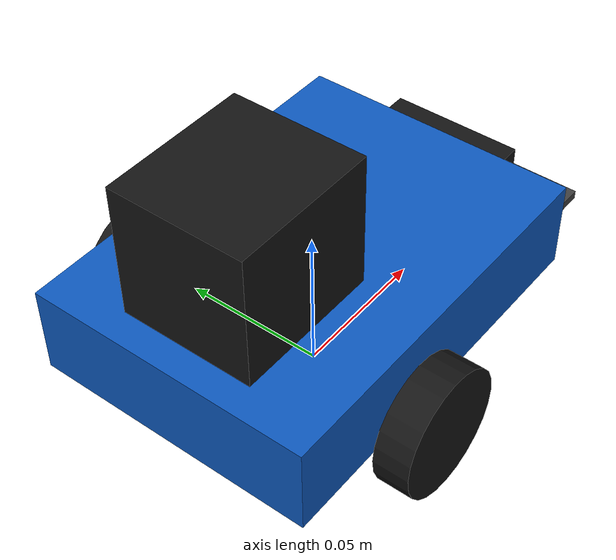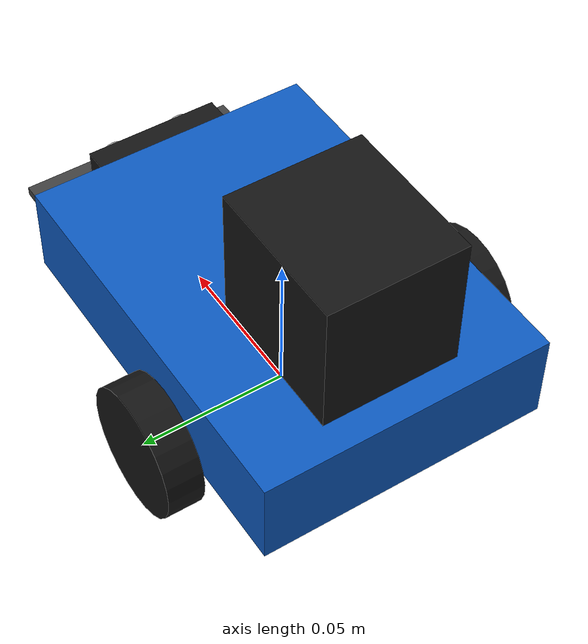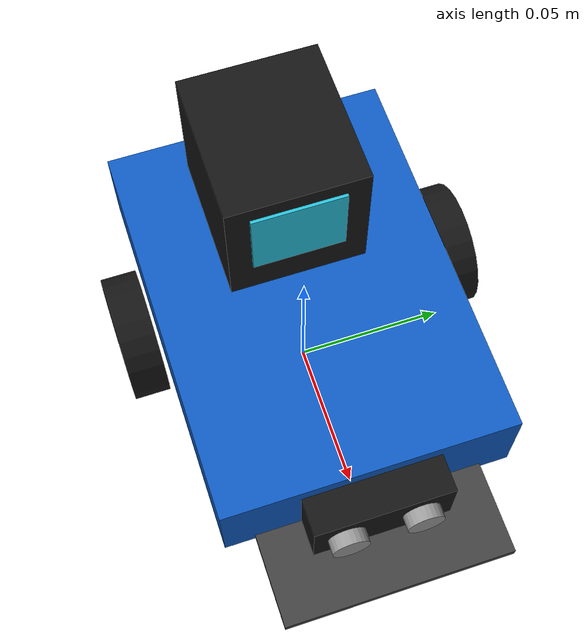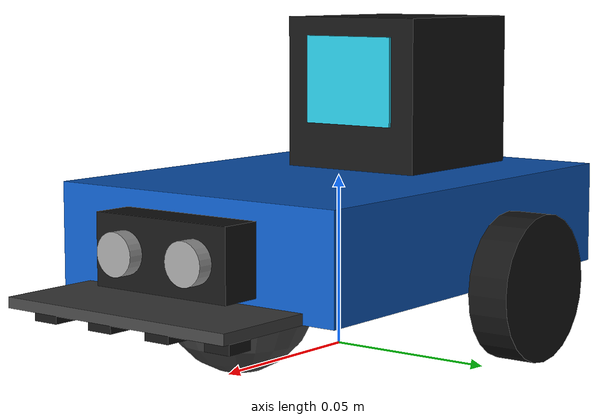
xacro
<?xml version="1.0"?>
<robot name="mbot2" xmlns:xacro="http://www.ros.org/wiki/xacro">

  <!-- Prefix ทุก Gazebo topic ของหุ่นแต่ละตัว เช่น /mbot1 หรือ /mbot2 -->
  <xacro:arg name="robot_namespace" default=""/>
  <xacro:property name="topic_namespace" value="$(arg robot_namespace)"/>

  <!-- Dimensions are approximate, based on mBot2's published        -->
  <!-- overall size (~170 x 95 x 75 mm). Built from primitives only  -->
  <!-- (no mesh files needed).                                       -->

  <!-- Chassis -->
  <xacro:property name="chassis_length" value="0.130"/>
  <xacro:property name="chassis_width"  value="0.095"/>
  <xacro:property name="chassis_height" value="0.030"/>
  <xacro:property name="chassis_mass"   value="0.35"/>

  <!-- Drive wheels -->
  <xacro:property name="wheel_radius" value="0.021"/>
  <xacro:property name="wheel_width"  value="0.012"/>
  <xacro:property name="wheel_mass"   value="0.03"/>
  <xacro:property name="wheel_separation" value="0.110"/>
  <xacro:property name="wheel_x" value="-0.015"/>

  <!-- Caster (rear/front support wheel, modeled as a low-friction sphere) -->
  <xacro:property name="caster_radius" value="${wheel_radius}"/>
  <xacro:property name="caster_mass"   value="0.01"/>
  <xacro:property name="caster_x" value="${chassis_length/2 - 0.02}"/>

  <!-- CyberPi controller block on top -->
  <xacro:property name="cyberpi_length" value="0.050"/>
  <xacro:property name="cyberpi_width"  value="0.045"/>
  <xacro:property name="cyberpi_height" value="0.045"/>
  <xacro:property name="cyberpi_mass"   value="0.05"/>
  <xacro:property name="cyberpi_x" value="-0.030"/>

  <!-- Ultrasonic sensor block at the front -->
  <xacro:property name="us_length" value="0.015"/>
  <xacro:property name="us_width"  value="0.045"/>
  <xacro:property name="us_height" value="0.020"/>
  <xacro:property name="us_mass"   value="0.01"/>

  <!-- Front sensor mount plate: extends past the chassis + caster so the -->
  <!-- Quad RGB array can see the ground ahead of every wheel -->
  <xacro:property name="mount_length"    value="0.03"/>
  <xacro:property name="mount_width"     value="0.075"/>
  <xacro:property name="mount_thickness" value="0.003"/>
  <xacro:property name="mount_x" value="${chassis_length/2 + mount_length/2}"/>

  <!-- Quad RGB color sensor array, underside of the front mount plate -->
  <xacro:property name="qrgb_size" value="0.008"/>
  <xacro:property name="qrgb_height" value="0.004"/>
  <xacro:property name="qrgb_mass"   value="0.001"/>
  <xacro:property name="qrgb_x" value="${chassis_length/2 + mount_length - 0.01}"/>
  <xacro:property name="qrgb_z" value="${wheel_radius - qrgb_height/2}"/>
  <xacro:property name="mount_z" value="${qrgb_z + qrgb_height/2 + mount_thickness/2}"/>

  <!-- Colors -->
  <material name="mbot_blue">
    <color rgba="0.05 0.35 0.75 1.0"/>
  </material>
  <material name="mbot_black">
    <color rgba="0.08 0.08 0.08 1.0"/>
  </material>
  <material name="mbot_dark_grey">
    <color rgba="0.25 0.25 0.25 1.0"/>
  </material>
  <material name="mbot_screen">
    <color rgba="0.15 0.75 0.85 1.0"/>
  </material>
  <material name="mbot_eye">
    <color rgba="0.6 0.6 0.6 1.0"/>
  </material>

  <!-- base_link : chassis                                           -->
  <!-- Origin is on the ground, centered between the two drive       -->
  <!-- wheels (REP-103: x forward, y left, z up).                    -->
  <link name="base_link">
    <visual>
      <origin xyz="0 0 ${wheel_radius + chassis_height/2}" rpy="0 0 0"/>
      <geometry>
        <box size="${chassis_length} ${chassis_width} ${chassis_height}"/>
      </geometry>
      <material name="mbot_blue"/>
    </visual>
    <collision>
      <origin xyz="0 0 ${wheel_radius + chassis_height/2}" rpy="0 0 0"/>
      <geometry>
        <box size="${chassis_length} ${chassis_width} ${chassis_height}"/>
      </geometry>
    </collision>
    <inertial>
      <origin xyz="0 0 ${wheel_radius + chassis_height/2}" rpy="0 0 0"/>
      <mass value="${chassis_mass}"/>
      <inertia ixx="0.0006" ixy="0" ixz="0" iyy="0.0009" iyz="0" izz="0.0012"/>
    </inertial>
  </link>

  <!-- CyberPi controller block (top, toward the rear)                -->
  <link name="cyberpi_link">
    <visual>
      <geometry>
        <box size="${cyberpi_length} ${cyberpi_width} ${cyberpi_height}"/>
      </geometry>
      <material name="mbot_black"/>
    </visual>
    <collision>
      <geometry>
        <box size="${cyberpi_length} ${cyberpi_width} ${cyberpi_height}"/>
      </geometry>
    </collision>
    <inertial>
      <mass value="${cyberpi_mass}"/>
      <inertia ixx="0.00002" ixy="0" ixz="0" iyy="0.00002" iyz="0" izz="0.00002"/>
    </inertial>
  </link>

  <joint name="cyberpi_joint" type="fixed">
    <parent link="base_link"/>
    <child link="cyberpi_link"/>
    <origin xyz="${cyberpi_x} 0 ${wheel_radius + chassis_height + cyberpi_height/2}" rpy="0 0 0"/>
  </joint>

  <!-- Little screen face on the CyberPi block, facing forward/up -->
  <link name="cyberpi_screen_link">
    <visual>
      <geometry>
        <box size="0.004 0.030 0.026"/>
      </geometry>
      <material name="mbot_screen"/>
    </visual>
  </link>

  <joint name="cyberpi_screen_joint" type="fixed">
    <parent link="cyberpi_link"/>
    <child link="cyberpi_screen_link"/>
    <origin xyz="${cyberpi_length/2 - 0.001} 0 0.004" rpy="0 0 0"/>
  </joint>

  <!-- Ultrasonic sensor block, front of the chassis                  -->
  <link name="ultrasonic_link">
    <visual>
      <geometry>
        <box size="${us_length} ${us_width} ${us_height}"/>
      </geometry>
      <material name="mbot_black"/>
    </visual>
    <collision>
      <geometry>
        <box size="${us_length} ${us_width} ${us_height}"/>
      </geometry>
    </collision>
    <inertial>
      <mass value="${us_mass}"/>
      <inertia ixx="0.000005" ixy="0" ixz="0" iyy="0.000005" iyz="0" izz="0.000005"/>
    </inertial>
  </link>

  <joint name="ultrasonic_joint" type="fixed">
    <parent link="base_link"/>
    <child link="ultrasonic_link"/>
    <origin xyz="${chassis_length/2 + us_length/2 - 0.003} 0 ${wheel_radius + chassis_height/2}" rpy="0 0 0"/>
  </joint>

  <!-- Two small "eyes" on the ultrasonic sensor, purely cosmetic -->
  <xacro:macro name="us_eye" params="suffix y_off">
    <link name="ultrasonic_eye_${suffix}">
      <visual>
        <geometry>
          <cylinder radius="0.006" length="0.006"/>
        </geometry>
        <material name="mbot_eye"/>
      </visual>
    </link>
    <joint name="ultrasonic_eye_${suffix}_joint" type="fixed">
      <parent link="ultrasonic_link"/>
      <child link="ultrasonic_eye_${suffix}"/>
      <origin xyz="0.009 ${y_off} 0" rpy="0 ${pi/2} 0"/>
    </joint>
  </xacro:macro>
  <xacro:us_eye suffix="left"  y_off="0.012"/>
  <xacro:us_eye suffix="right" y_off="-0.012"/>

  <!-- Drive wheels                                                   -->
  <xacro:macro name="drive_wheel" params="prefix reflect">
    <link name="${prefix}_wheel_link">
      <visual>
        <origin xyz="0 0 0" rpy="${pi/2} 0 0"/>
        <geometry>
          <cylinder radius="${wheel_radius}" length="${wheel_width}"/>
        </geometry>
        <material name="mbot_black"/>
      </visual>
      <collision>
        <origin xyz="0 0 0" rpy="${pi/2} 0 0"/>
        <geometry>
          <cylinder radius="${wheel_radius}" length="${wheel_width}"/>
        </geometry>
      </collision>
      <inertial>
        <mass value="${wheel_mass}"/>
        <inertia ixx="0.00001" ixy="0" ixz="0" iyy="0.00001" iyz="0" izz="0.00001"/>
      </inertial>
    </link>

    <joint name="${prefix}_wheel_joint" type="continuous">
      <parent link="base_link"/>
      <child link="${prefix}_wheel_link"/>
      <origin xyz="${wheel_x} ${reflect * wheel_separation/2} ${wheel_radius}" rpy="0 0 0"/>
      <axis xyz="0 1 0"/>
    </joint>

    <gazebo reference="${prefix}_wheel_link">
      <mu1>1.0</mu1>
      <mu2>1.0</mu2>
    </gazebo>
  </xacro:macro>

  <xacro:drive_wheel prefix="left"  reflect="1"/>
  <xacro:drive_wheel prefix="right" reflect="-1"/>

  <!-- Caster (support) wheel, modeled as a low-friction sphere       -->
  <link name="caster_link">
    <visual>
      <geometry>
        <sphere radius="${caster_radius}"/>
      </geometry>
      <material name="mbot_dark_grey"/>
    </visual>
    <collision>
      <geometry>
        <sphere radius="${caster_radius}"/>
      </geometry>
    </collision>
    <inertial>
      <mass value="${caster_mass}"/>
      <inertia ixx="0.000002" ixy="0" ixz="0" iyy="0.000002" iyz="0" izz="0.000002"/>
    </inertial>
  </link>

  <joint name="caster_joint" type="fixed">
    <parent link="base_link"/>
    <child link="caster_link"/>
    <origin xyz="${caster_x} 0 ${caster_radius}" rpy="0 0 0"/>
  </joint>

  <gazebo reference="caster_link">
    <mu1>0.001</mu1>
    <mu2>0.001</mu2>
  </gazebo>

  <!-- Front sensor mount plate (cosmetic, no collision) — carries   -->
  <!-- the Quad RGB array out past the caster so the sensors see the -->
  <!-- ground ahead of every wheel, same as a real line-follower.    -->
  <link name="sensor_mount_link">
    <visual>
      <geometry>
        <box size="${mount_length} ${mount_width} ${mount_thickness}"/>
      </geometry>
      <material name="mbot_dark_grey"/>
    </visual>
    <inertial>
      <mass value="0.002"/>
      <inertia ixx="1e-8" ixy="0" ixz="0" iyy="1e-8" iyz="0" izz="1e-8"/>
    </inertial>
  </link>

  <joint name="sensor_mount_joint" type="fixed">
    <parent link="base_link"/>
    <child link="sensor_mount_link"/>
    <origin xyz="${mount_x} 0 ${mount_z}" rpy="0 0 0"/>
  </joint>

  <!-- Quad RGB color sensor array (4x), underside of the chassis    -->
  <!-- Each unit is modeled as a 1x1 pixel downward-facing camera,   -->
  <!-- matching the real Quad RGB module's per-channel color read.   -->
  <xacro:macro name="quad_rgb_unit" params="idx y_off">
    <link name="quad_rgb_${idx}_link">
      <visual>
        <geometry>
          <box size="${qrgb_size} ${qrgb_size} ${qrgb_height}"/>
        </geometry>
        <material name="mbot_black"/>
      </visual>
      <inertial>
        <mass value="${qrgb_mass}"/>
        <inertia ixx="1e-8" ixy="0" ixz="0" iyy="1e-8" iyz="0" izz="1e-8"/>
      </inertial>
    </link>

    <joint name="quad_rgb_${idx}_joint" type="fixed">
      <parent link="base_link"/>
      <child link="quad_rgb_${idx}_link"/>
      <origin xyz="${qrgb_x} ${y_off} ${qrgb_z}" rpy="0 0 0"/>
    </joint>

    <gazebo reference="quad_rgb_${idx}_link">
      <sensor name="quad_rgb_${idx}_sensor" type="camera">
        <!-- pitch +90deg: rotates the sensor's forward (+x) axis to point straight down (-z) -->
        <pose>0 0 0 0 1.5707963 0</pose>
        <topic>${topic_namespace}/quad_rgb_${idx}/image</topic>
        <update_rate>15</update_rate>
        <always_on>true</always_on>
        <visualize>false</visualize>
        <camera>
          <horizontal_fov>0.5</horizontal_fov>
          <image>
            <width>1</width>
            <height>1</height>
            <format>R8G8B8</format>
          </image>
          <clip>
            <!-- far must be >= 0.1 (Gazebo Fortress camera clip minimum) -->
            <near>0.01</near>
            <far>0.15</far>
          </clip>
        </camera>
      </sensor>
    </gazebo>
  </xacro:macro>

  <xacro:quad_rgb_unit idx="1" y_off="0.030"/>
  <xacro:quad_rgb_unit idx="2" y_off="0.010"/>
  <xacro:quad_rgb_unit idx="3" y_off="-0.010"/>
  <xacro:quad_rgb_unit idx="4" y_off="-0.030"/>

  <!-- Ultrasonic distance sensor (functional)                       -->
  <!-- Modeled after mBot2's real Ultrasonic Sensor 2: output range   -->
  <!-- 5-300 cm, detection angle < 30 deg. Implemented as a single-   -->
  <!-- ray gpu_lidar, which is the standard way to emulate a sonar    -->
  <!-- in Gazebo Sim.                                                 -->
  <gazebo reference="ultrasonic_link">
    <sensor name="ultrasonic_sensor" type="gpu_lidar">
      <pose>${us_length/2} 0 0 0 0 0</pose>
      <topic>${topic_namespace}/ultrasonic/scan</topic>
      <update_rate>10</update_rate>
      <always_on>true</always_on>
      <visualize>false</visualize>
      <lidar>
        <scan>
          <horizontal>
            <samples>1</samples>
            <resolution>1</resolution>
            <min_angle>-0.13</min_angle>
            <max_angle>0.13</max_angle>
          </horizontal>
          <vertical>
            <samples>1</samples>
            <resolution>1</resolution>
            <min_angle>0</min_angle>
            <max_angle>0</max_angle>
          </vertical>
        </scan>
        <range>
          <min>0.05</min>
          <max>3.0</max>
          <resolution>0.01</resolution>
        </range>
      </lidar>
    </sensor>
  </gazebo>

  <!-- IMU (functional) - CyberPi's built-in gyroscope/accelerometer  -->
  <gazebo reference="cyberpi_link">
    <sensor name="imu_sensor" type="imu">
      <topic>${topic_namespace}/imu</topic>
      <update_rate>50</update_rate>
      <always_on>true</always_on>
      <visualize>false</visualize>
    </sensor>
  </gazebo>

  <!-- Gazebo Sim plugins (Fortress / gz-sim 6.x, ROS 2 Humble)       -->
  <gazebo>
    <plugin filename="libignition-gazebo-diff-drive-system.so"
            name="ignition::gazebo::systems::DiffDrive">
      <left_joint>left_wheel_joint</left_joint>
      <right_joint>right_wheel_joint</right_joint>
      <wheel_separation>${wheel_separation}</wheel_separation>
      <wheel_radius>${wheel_radius}</wheel_radius>
      <max_linear_acceleration>2.0</max_linear_acceleration>
      <topic>${topic_namespace}/cmd_vel</topic>
      <odom_topic>${topic_namespace}/odom</odom_topic>
      <tf_topic>${topic_namespace}/tf</tf_topic>
      <frame_id>odom</frame_id>
      <child_frame_id>base_link</child_frame_id>
      <odom_publish_frequency>30</odom_publish_frequency>
    </plugin>

    <plugin filename="libignition-gazebo-joint-state-publisher-system.so"
            name="ignition::gazebo::systems::JointStatePublisher">
      <topic>${topic_namespace}/joint_states</topic>
    </plugin>
  </gazebo>

</robot>
